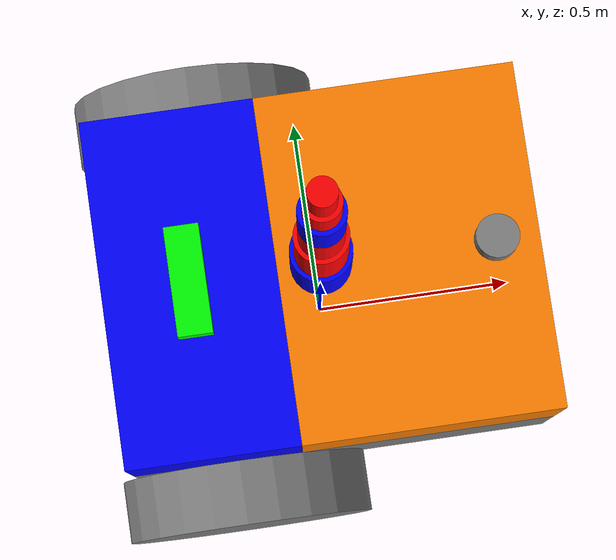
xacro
<?xml version="1.0"?>
<robot name="car_washing_robot" xmlns:xacro="http://www.ros.org/wiki/xacro">

    <xacro:include filename="common_properties.xacro" />
    <xacro:include filename="mobile_base.xacro" />
    <xacro:include filename="mobile_base_gazebo.xacro" />
    <xacro:include filename="water_tank.xacro"/>
    <xacro:include filename="soap_tank.xacro"/>
    <xacro:include filename="camera.xacro" />
    <xacro:include filename="six_dof_arm.xacro"/>
    <xacro:include filename="six_dof_arm_gazebo.xacro"/>
    <xacro:include filename="lidar.xacro"/>

    <!-- Connection Joint Between Mobile Base and Arm -->

    <joint name="mobile_base_arm_joint" type="fixed">
        <parent link="base_link" />
        <child link="arm_base_link" />
        <origin xyz="${base_length / 5.0} 0 ${base_height + arm_base_height/2.0}" rpy="0 0 0" />
    </joint>

</robot>

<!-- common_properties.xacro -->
<robot xmlns:xacro="http://www.ros.org/wiki/xacro">

        <material name="blue">
            <color rgba="0 0 1 1" />
        </material>

        <material name="grey">
            <color rgba="0.5 0.5 0.5 1" />
        </material>

        <material name="orange">
            <color rgba="1 0.5 0 1"/>
        </material>

        <material name="yellow">
            <color rgba="1 1 0 1"/>
        </material>

        <material name="green">
            <color rgba="0 1 0 1"/>
        </material>

        <material name="red">
            <color rgba="1 0 0 1"/>
        </material>

        <xacro:macro name="box_inertia" params="m x y z o_xyz o_rpy">
            <inertial>
                <mass value="${m}" />
                <origin xyz="${o_xyz}" rpy="${o_rpy}"/>
                <inertia ixx="${(m/12) * (y*y + z*z)}" ixy="0" ixz="0"
                         iyy="${(m/12) * (x*x + z*z)}" iyz="0"
                         izz="${(m/12) * (x*x + y*y)}"/>
            </inertial>
        </xacro:macro>

        <xacro:macro name="cylinder_inertia" params="m r l o_xyz o_rpy">
            <inertial>
                <mass value="${m}" />
                <origin xyz="${o_xyz}" rpy="${o_rpy}"/>
                <inertia ixx="${(m/12)*(3*r*r + l*l)}" ixy="0" ixz="0"
                         iyy="${(m/12)*(3*r*r + l*l)}" iyz="0"
                         izz="${(m/2) * (r*r)}"/>
            </inertial>
        </xacro:macro>

        <xacro:macro name="sphere_inertia" params="m r o_xyz o_rpy">
            <inertial>
                <mass value="${m}"/>
                <origin xyz="${o_xyz}" rpy="${o_rpy}"/>
                <inertia ixx="${(2/5) *m*r*r}" ixy="0" ixz="0"
                         iyy="${(2/5) *m*r*r}" iyz="0"
                         izz="${(2/5) *m*r*r}"/>
            </inertial>
        </xacro:macro>

    </robot>

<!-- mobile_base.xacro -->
<robot xmlns:xacro="http://www.ros.org/wiki/xacro">
        <xacro:property name="base_length" value="1"/>
        <xacro:property name="base_width" value="0.8"/>
        <xacro:property name="base_height" value="0.26"/>

        <xacro:property name="wheel_radius" value="0.3"/>
        <xacro:property name="wheel_length" value="0.15"/>

        <link name="base_footprint" />

        <link name="base_link">
            <visual>
                <geometry>
                    <box size="${base_length} ${base_width} ${base_height}" />
                </geometry>
                <origin xyz="0 0 ${base_height / 2.0}" rpy="0 0 0" />
                <material name="grey" />
            </visual>
            <collision>
                <geometry>
                    <box size="${base_length} ${base_width} ${base_height}" />
                </geometry>
                <origin xyz="0 0 ${base_height / 2.0}" rpy="0 0 0" />
            </collision>
            <xacro:box_inertia m="40.0" x="${base_length}" y="${base_width}" z="${base_height}"
                               o_xyz="0 0 ${base_height / 2.0}" o_rpy="0 0 0"/>
        </link>

        <xacro:macro name="wheel_link" params="prefix">
            <link name="${prefix}_wheel_link">
                <visual>
                    <geometry>
                        <cylinder radius="${wheel_radius}" length="${wheel_length}" />
                    </geometry>
                    <origin xyz="0 0 0" rpy="${pi / 2.0} 0 0" />
                    <material name="grey" />
                </visual>
                <collision>
                    <geometry>
                        <sphere radius="${wheel_radius}"/>
                    </geometry>
                    <origin xyz="0 0 0" rpy="0 0 0" />
                </collision>
                <xacro:cylinder_inertia m="1.0" r="${wheel_radius}" l="${wheel_length}"
                                        o_xyz="0 0 0" o_rpy="${pi / 2.0} 0 0"/>
            </link>
        </xacro:macro>

        <xacro:wheel_link prefix="right"/>
        <xacro:wheel_link prefix="left"/>

        <link name="caster_wheel_link">
            <visual>
                <geometry>
                    <sphere radius="${wheel_radius / 2.0}" />
                </geometry>
                <origin xyz="0 0 0" rpy="0 0 0" />
                <material name="grey" />
            </visual>
            <collision>
                <geometry>
                    <sphere radius="${wheel_radius / 2.0}" />
                </geometry>
                <origin xyz="0 0 0" rpy="0 0 0" />
            </collision>
            <xacro:sphere_inertia m="0.5" r="${wheel_radius / 2.0}"
                                  o_xyz="0 0 0" o_rpy="0 0 0"/>
        </link>

        <joint name="base_joint" type="fixed">
            <parent link="base_footprint"/>
            <child link="base_link"/>
            <origin xyz="0 0 ${wheel_radius}" rpy="0 0 0"/>
        </joint>

        <joint name="base_right_wheel_joint" type="continuous">
            <parent link="base_link" />
            <child link="right_wheel_link" />
            <origin xyz="${-base_length / 4.0} ${-(base_width + wheel_length) / 2.0} 0" rpy="0 0 0" />
            <axis xyz="0 1 0" />
        </joint>

        <joint name="base_left_wheel_joint" type="continuous">
            <parent link="base_link" />
            <child link="left_wheel_link" />
            <origin xyz="${-base_length / 4.0} ${(base_width + wheel_length) / 2.0} 0" rpy="0 0 0" />
            <axis xyz="0 1 0" />
        </joint>

        <joint name="base_caster_wheel_joint" type="fixed">
            <parent link="base_link" />
            <child link="caster_wheel_link" />
            <origin xyz="${base_length / 3.0} 0 ${-wheel_radius / 2.0}" rpy="0 0 0" />

        </joint>
    </robot>

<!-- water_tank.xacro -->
<robot xmlns:xacro="http://www.ros.org/wiki/xacro">

    <xacro:property name="water_tank_length" value="${base_width}"/>
    <xacro:property name="water_tank_width" value="0.40"/>
    <xacro:property name="water_tank_height" value="0.26"/>

    <link name="water_tank_link">
        <visual>
            <geometry>
                <box size="${water_tank_length} ${water_tank_width} ${water_tank_height}"/>
            </geometry>
            <origin xyz="0 0 0" rpy="0 0 1.5708" />
            <material name="blue"/>
        </visual>
        <collision>
            <geometry>
                <box size="${water_tank_length} ${water_tank_width} ${water_tank_height}"/>
            </geometry>
            <origin xyz="0 0 0" rpy="0 0 1.5708" />
        </collision>
        <xacro:box_inertia m="5" x="${water_tank_length}" y="${water_tank_width}" z="${water_tank_height}"
                          o_xyz="0 0 0" o_rpy="0 0 0"/>
    </link>

    <joint name="base_water_tank" type="fixed">
        <parent link="base_link"/>
        <child link="water_tank_link"/>
        <origin xyz="${-base_length/2.0 + water_tank_width/2.0} 0 ${base_height + water_tank_height/2.0}" rpy="0 0 0"/>
    </joint>

</robot>

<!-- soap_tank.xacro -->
<robot xmlns:xacro="http://www.ros.org/wiki/xacro">

    <xacro:property name="soap_tank_length" value="0.25"/>
    <xacro:property name="soap_tank_width" value="0.08"/>
    <xacro:property name="soap_tank_height" value="0.05"/>

    <link name="soap_tank_link">
        <visual>
            <geometry>
                <box size="${soap_tank_length} ${soap_tank_width} ${soap_tank_height}"/>
            </geometry>
            <origin xyz="0 0 ${soap_tank_height/2.0}" rpy="0 0 1.5708" />
            <material name="green"/>
        </visual>
        <collision>
            <geometry>
                <box size="${soap_tank_length} ${soap_tank_width} ${soap_tank_height}"/>
            </geometry>
            <origin xyz="0 0 ${soap_tank_height/2.0}" rpy="0 0 1.5708" />
        </collision>
        <xacro:box_inertia m="5" x="${soap_tank_length}" y="${soap_tank_width}" z="${soap_tank_height}"
                          o_xyz="0 0 0" o_rpy="0 0 0"/>
    </link>

    <joint name="base_soap_tank" type="fixed">
        <parent link="base_link"/>
        <child link="soap_tank_link"/>
        <origin xyz="${-base_length/2.0 + water_tank_width/2.0} 0 ${base_height + water_tank_height}" rpy="0 0 0"/>
    </joint>

</robot>

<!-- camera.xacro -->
<robot xmlns:xacro="http://www.ros.org/wiki/xacro">

    <xacro:property name="camera_length" value="0.01"/>
    <xacro:property name="camera_width" value="0.1"/>
    <xacro:property name="camera_height" value="0.05"/>

    <link name="camera_link">
        <visual>
            <geometry>
                <box size="${camera_length} ${camera_width} ${camera_height}"/>
            </geometry>
            <material name="grey"/>
        </visual>
        <collision>
            <geometry>
                <box size="${camera_length} ${camera_width} ${camera_height}"/>
            </geometry>
        </collision>
        <xacro:box_inertia m="0.1" x="${camera_length}" y="${camera_width}" z="${camera_height}"
                          o_xyz="0 0 0" o_rpy="0 0 0"/>
    </link>

    <joint name="base_camera_joint" type="fixed">
        <parent link="base_link"/>
        <child link="camera_link"/>
        <origin xyz="${(base_length + camera_length)/2.0} 0 ${base_height/2.0}" rpy="0 0 0"/>
    </joint>

    <!-- For OpenCV to work with Rviz  -->
    <link name="camera_link_optical"/>

    <joint name="camera_optical_joint" type="fixed">
        <!-- these values have to be these values otherwise the gazebo camera
            image won't be aligned properly with the frame it is supposedly
            originating from -->
        <origin xyz="0 0 0" rpy="${-pi/2} 0 ${-pi/2}"/>
        <parent link="camera_link"/>
        <child link="camera_link_optical"/>
    </joint>

    <gazebo reference="camera_link">
        <sensor name="camera" type="camera">
            <camera>
                <horizontal_fov>1.3962634</horizontal_fov>
                <image>
                    <width>640</width>
                    <height>480</height>
                    <format>R8G8B8</format>
                </image>
                <clip>
                    <near>0.1</near>
                    <far>15</far>
                </clip>
                <noise>
                    <type>gaussian</type>
                    <mean>0.0</mean>
                    <stddev>0.007</stddev>
                </noise>
                <optical_frame_id>camera_link_optical</optical_frame_id>
                <camera_info_topic>camera/camera_info</camera_info_topic>
            </camera>
            <always_on>1</always_on>
            <update_rate>20</update_rate>
            <visualize>true</visualize>
            <topic>camera/image_raw</topic>
        </sensor>
    </gazebo>
</robot>

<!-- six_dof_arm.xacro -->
<robot xmlns:xacro="http://www.ros.org/wiki/xacro">

<!--Arm base link-->

    <xacro:property name="arm_base_length" value="0.6" />
    <xacro:property name="arm_base_width" value="0.8" />
    <xacro:property name="arm_base_height" value="0.26" />

    <link name="arm_base_link">
        <visual>
            <geometry>
                <box size="${arm_base_length} ${arm_base_width} ${arm_base_height}" />
            </geometry>
            <origin xyz="0 0 0" rpy="0 0 0" />
            <material name="orange" />
        </visual>
        <collision>
            <geometry>
                <box size="${arm_base_length} ${arm_base_width} ${arm_base_height}" />
            </geometry>
            <origin xyz="0 0 0" rpy="0 0 0" />
        </collision>
        <xacro:box_inertia m="10.0" x="${arm_base_length}" y="${arm_base_width}" z="${arm_base_height}"
                           o_xyz="0 0 0" o_rpy="0 0 0" />
    </link>

  <!-- Links and Joints -->

  <xacro:macro name="arm_link" params="link_name parent_name xyz rpy length radius mass ixx iyy izz">
    <link name="${link_name}">
      <visual>
        <geometry>
          <cylinder length="${length}" radius="${radius}"/>
        </geometry>
        <origin xyz="0 0 ${length/2}" rpy="0 0 0"/>
        <material name="red"/>
      </visual>
      <collision>
        <geometry>
          <cylinder length="${length}" radius="${radius}"/>
        </geometry>
        <origin xyz="0 0 ${length/2}" rpy="0 0 0"/>
      </collision>
      <xacro:cylinder_inertia m="0.3" r="${radius}" l="${length}"
                                o_xyz="0 0 ${length / 2.0}" o_rpy="0 0 0" />
    </link>

    <joint name="${link_name}_joint" type="revolute">
      <parent link="${parent_name}"/>
      <child link="${link_name}"/>
      <origin xyz="${xyz}" rpy="${rpy}"/>
      <axis xyz="0 1 0"/>
      <limit lower="${-pi/2}" upper="${pi/2}" effort="100" velocity="100" />
      <dynamics friction="10.0" damping="50.0" />
    </joint>
  </xacro:macro>

     <!-- Z-axis Rotating Link and Joint -->

  <xacro:macro name="z_axis_arm_link" params="link_name parent_name xyz rpy length radius mass ixx iyy izz">
    <link name="${link_name}">
      <visual>
        <geometry>
          <cylinder length="${length}" radius="${radius}"/>
        </geometry>
        <origin xyz="0 0 ${length/2}" rpy="0 0 0"/>
        <material name="blue"/>
      </visual>
      <collision>
        <geometry>
          <cylinder length="${length}" radius="${radius}"/>
        </geometry>
        <origin xyz="0 0 ${length/2}" rpy="0 0 0"/>
      </collision>
      <xacro:cylinder_inertia m="0.3" r="${radius}" l="${length}"
                                o_xyz="0 0 ${length / 2.0}" o_rpy="0 0 0" />
    </link>

    <joint name="${link_name}_joint" type="revolute">
      <parent link="${parent_name}"/>
      <child link="${link_name}"/>
      <origin xyz="${xyz}" rpy="${rpy}"/>
      <axis xyz="0 0 1"/>
      <limit lower="${-pi/2}" upper="${pi/2}" effort="100" velocity="100" />
      <dynamics friction="10.0" damping="50.0" />
    </joint>
  </xacro:macro>

  <!-- Instantiate 6 links -->
  <xacro:z_axis_arm_link link_name="link_1" parent_name="arm_base_link" xyz="${-arm_base_width/4.0} 0 0.13" rpy="0 0 0" length="0.2" radius="0.07" mass="1.0" ixx="0.005" iyy="0.005" izz="0.005"/>
  <xacro:arm_link link_name="link_2" parent_name="link_1" xyz="0 0 0.2" rpy="0 0 0" length="0.2" radius="0.06" mass="0.8" ixx="0.003" iyy="0.003" izz="0.003"/>
  <xacro:arm_link link_name="link_3" parent_name="link_2" xyz="0 0 0.2" rpy="0 0 0" length="0.15" radius="0.05" mass="0.6" ixx="0.002" iyy="0.002" izz="0.002"/>
  <xacro:z_axis_arm_link link_name="link_4" parent_name="link_3" xyz="0 0 0.15" rpy="0 0 0" length="0.15" radius="0.05" mass="0.5" ixx="0.0015" iyy="0.0015" izz="0.0015"/>
  <xacro:arm_link link_name="link_5" parent_name="link_4" xyz="0 0 0.15" rpy="0 0 0" length="0.1" radius="0.04" mass="0.3" ixx="0.001" iyy="0.001" izz="0.001"/>
  <xacro:arm_link link_name="link_6" parent_name="link_5" xyz="0 0 0.1" rpy="0 0 0" length="0.1" radius="0.03" mass="0.2" ixx="0.0008" iyy="0.0008" izz="0.0008"/>

</robot>

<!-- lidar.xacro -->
<robot xmlns:xacro="http://www.ros.org/wiki/xacro">

    <xacro:property name="base_scan_radius" value="0.05"/>
    <xacro:property name="base_scan_length" value="0.05"/>

    <link name="base_scan">
        <visual>
            <geometry>
                <cylinder radius="${base_scan_radius}" length="${base_scan_length}"/>
            </geometry>
            <origin xyz="0 0 ${base_scan_length/2.0}" rpy="0 0 0"/>
            <material name="grey"/>
        </visual>
        <collision>
            <geometry>
                <cylinder radius="${base_scan_radius}" length="${base_scan_length}"/>
            </geometry>
        </collision>
        <xacro:cylinder_inertia m="0.3" r="${base_scan_radius}" l="${base_scan_length}"
                                o_xyz="0 0 ${base_scan_length / 2.0}" o_rpy="0 0 0" />
    </link>

    <joint name="base_scan_joint" type="fixed">
        <parent link="base_link"/>
        <child link="base_scan"/>
        <origin xyz="${arm_base_width/2.0} 0 ${arm_base_height + base_height}" rpy="0 0 0"/>
    </joint>

    <gazebo reference="base_scan">
        <sensor name="lidar" type="gpu_lidar">
            <update_rate>10</update_rate>
            <topic>scan</topic>
            <frame_name>base_scan</frame_name>

            <lidar>
                <horizontal>
                    <samples>180</samples>
                    <min_angle>-1.5708</min_angle>
                    <max_angle>1.5708</max_angle>
                </horizontal>
                <range>
                    <min>0.12</min>
                    <max>10.0</max>
                </range>
            </lidar>
        </sensor>
    </gazebo>

</robot>
